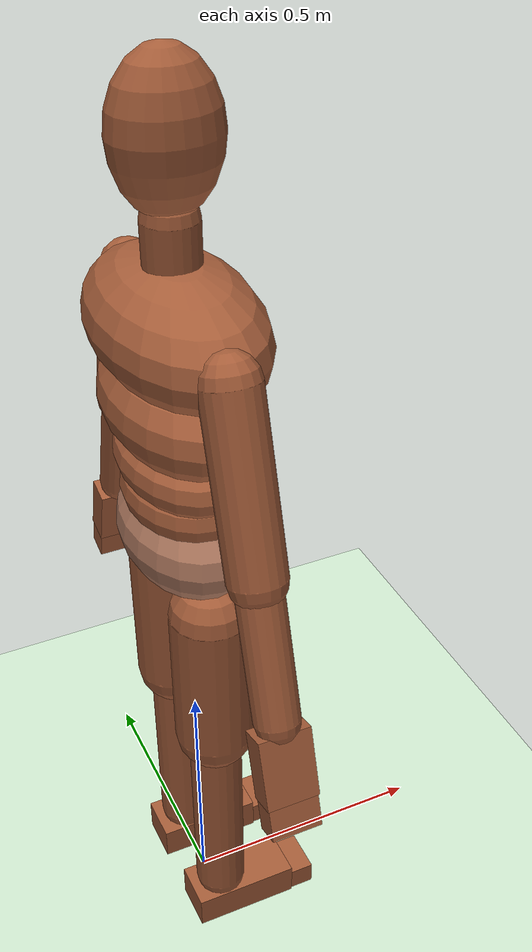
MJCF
<mujoco model="noted_average_human_body_articulated">

    <compiler angle="degree" inertiafromgeom="auto"/>

    <option integrator="implicitfast" iterations="20" solver="Newton" timestep="0.0025"/>

    <visual>
        <map fogend="5" fogstart="3"/>
        <global azimuth="150" elevation="-15"/>
        <headlight ambient="0.35 0.35 0.35" diffuse="0.65 0.65 0.65" specular="0.2 0.2 0.2"/>
    </visual>

    <asset>
        <texture builtin="gradient" height="100" rgb1=".4 .5 .6" rgb2="0 0 0" type="skybox" width="100"/>
        <texture builtin="flat" height="1278" mark="cross" markrgb="1 1 1" name="texgeom"
                 random="0.01" rgb1="0.80 0.60 0.47" rgb2="0.80 0.60 0.47" type="cube" width="127"/>
        <texture builtin="checker" height="100" name="texplane" rgb1="0 0 0" rgb2="0.8 0.8 0.8"
                 type="2d" width="100"/>
        <material name="MatPlane" reflectance="0.35" shininess="1" specular="0.4"
                  texrepeat="60 60" texture="texplane"/>
        <material name="skin" texture="texgeom" texuniform="true" rgba="0.80 0.60 0.47 1"/>
        <material name="skin_dark" rgba="0.68 0.47 0.37 1"/>
    </asset>

    <default>
        <joint limited="true" damping="1.5" armature="0.002"/>
        <geom conaffinity="1" condim="3" contype="1" density="950"
              friction="0.6 0 0" margin="0" material="skin"/>
        <motor ctrllimited="true"/>
    </default>

    <worldbody>
        <light cutoff="100" diffuse="1 1 1" dir="0 0 -1.3" directional="true"
               exponent="1" pos="0 0 3" specular=".1 .1 .1"/>
        <geom condim="3" friction="1 .1 .1" material="MatPlane" name="floor"
              pos="0 0 0" rgba="0.8 0.9 0.8 1" size="20 20 0.125" type="plane"/>
        <camera name="front" pos="0 -3.2 1.0" xyaxes="1 0 0 0 0.35 0.94"/>
        <camera name="side" pos="3.0 0 1.0" xyaxes="0 1 0 -0.35 0 0.94"/>

        <body name="pelvis_body" pos="0 0 0.920">
            <camera name="track" mode="trackcom" pos="0 -4 1.0" xyaxes="1 0 0 0 0 1"/>
            <freejoint name="root"/>
            <geom name="pelvis" type="ellipsoid" pos="0 0 0.015"
                  size="0.115 0.170 0.105" mass="10.0" material="skin_dark"/>

            <body name="lumbar_lower_body" pos="0 0 0.055">
                <joint name="lumbar_lower_flex" axis="0 1 0" range="-9 20" damping="4" stiffness="20"/>
                <joint name="lumbar_lower_lat" axis="1 0 0" range="-8 8" damping="3" stiffness="12"/>
                <joint name="lumbar_lower_axial" axis="0 0 1" range="-5 5" damping="3" stiffness="10"/>
                <geom name="lumbar_lower" type="ellipsoid" pos="0 0 0.045" size="0.105 0.145 0.075" mass="5.0"/>

                <body name="lumbar_upper_body" pos="0 0 0.070">
                    <joint name="lumbar_upper_flex" axis="0 1 0" range="-8 20" damping="4" stiffness="18"/>
                    <joint name="lumbar_upper_lat" axis="1 0 0" range="-8 8" damping="3" stiffness="12"/>
                    <joint name="lumbar_upper_axial" axis="0 0 1" range="-5 5" damping="3" stiffness="10"/>
                    <geom name="lumbar_upper" type="ellipsoid" pos="0 0 0.040" size="0.110 0.165 0.075" mass="5.0"/>

                    <body name="thoracic_lower_body" pos="0 0 0.080">
                        <joint name="thoracic_lower_flex" axis="0 1 0" range="-5 15" damping="4" stiffness="16"/>
                        <joint name="thoracic_lower_lat" axis="1 0 0" range="-8 8" damping="3" stiffness="12"/>
                        <joint name="thoracic_lower_axial" axis="0 0 1" range="-12 12" damping="3" stiffness="8"/>
                        <geom name="thoracic_lower" type="ellipsoid" pos="0 0 0.065" size="0.125 0.200 0.100" mass="6.0"/>

                        <body name="thoracic_upper_body" pos="0 0 0.130">
                            <joint name="thoracic_upper_flex" axis="0 1 0" range="-4 15" damping="4" stiffness="14"/>
                            <joint name="thoracic_upper_lat" axis="1 0 0" range="-8 8" damping="3" stiffness="10"/>
                            <joint name="thoracic_upper_axial" axis="0 0 1" range="-12 12" damping="3" stiffness="8"/>
                            <geom name="thoracic_upper" type="ellipsoid" pos="0 0 0.070" size="0.135 0.230 0.105" mass="6.6"/>

                            <body name="neck_body" pos="0 0 0.140">
                                <joint name="neck_flex" axis="0 1 0" range="-40 55" damping="2"/>
                                <joint name="neck_lat" axis="1 0 0" range="-35 35" damping="2"/>
                                <joint name="neck_axial" axis="0 0 1" range="-55 55" damping="2"/>
                                <geom name="neck_stick" type="capsule" fromto="0 0 0  0 0 0.100" size="0.047" mass="0.4"/>
                                <geom name="head" type="ellipsoid" pos="0 0 0.225" size="0.090 0.075 0.125" mass="4.8"/>
                            </body>

                            <body name="left_upper_arm_body" pos="0 0.210 0.075">
                                <joint name="left_shoulder_flex" axis="0 -0.957024 -0.290007" range="-40 145" damping="2"/>
                                <joint name="left_shoulder_abd" axis="1 0 0" range="-25 140" damping="2"/>
                                <joint name="left_shoulder_rot" axis="0 0.290007 -0.957024" range="-60 70" damping="2"/>
                                <geom name="left_upper_arm" type="capsule" fromto="0 0 0  0 0.090194 -0.297641" size="0.050" mass="2.03"/>

                                <body name="left_forearm_body" pos="0 0.090194 -0.297641">
                                    <joint name="left_elbow_flex" axis="0 -0.957024 -0.290007" range="0 135" damping="1.5"/>
                                    <joint name="left_forearm_roll" axis="0 0.290007 -0.957024" range="-80 80" damping="0.8"/>
                                    <geom name="left_forearm" type="capsule" fromto="0 0 0  0 0.071773 -0.236851" size="0.040" mass="1.22"/>

                                    <body name="left_palm_body" pos="0 0.071773 -0.236851"
                                          quat="0.707107 0 0.205066 -0.676718">
                                        <joint name="left_wrist_flex" axis="0 -0.957024 -0.290007" range="-70 80" damping="0.7"/>
                                        <joint name="left_wrist_dev" axis="1 0 0" range="-30 35" damping="0.7"/>
                                        <geom name="left_palm" type="box" pos="0 0.023201 -0.076562"
                                              quat="0.989198 0.146588 0 0" size="0.026 0.047 0.065"
                                              friction="0.8 0 0" mass="0.30"/>

                                        <body name="left_thumb_body" pos="0.020 0.045 -0.050">
                                            <joint name="left_thumb_flex" axis="0 1 0" range="0 60" damping="0.3" armature="0.0001"/>
                                            <geom name="left_thumb" type="capsule" fromto="0 0 0  0.025 0.040 -0.060" size="0.015" friction="0.8 0 0" mass="0.04"/>
                                        </body>

                                        <body name="left_fingers_body" pos="0 0.042051 -0.138769">
                                            <joint name="left_fingers_flex" axis="0 -0.957024 -0.290007" range="0 80" damping="0.3" armature="0.0001"/>
                                            <geom name="left_fingers_chunk" type="box" pos="0 0.007250 -0.023926"
                                                  quat="0.989198 0.146588 0 0" size="0.024 0.045 0.035"
                                                  friction="0.8 0 0" mass="0.12"/>
                                        </body>
                                    </body>
                                </body>
                            </body>

                            <body name="right_upper_arm_body" pos="0 -0.210 0.075">
                                <joint name="right_shoulder_flex" axis="0 -0.957024 0.290007" range="-40 145" damping="2"/>
                                <joint name="right_shoulder_abd" axis="-1 0 0" range="-25 140" damping="2"/>
                                <joint name="right_shoulder_rot" axis="0 -0.290007 -0.957024" range="-60 70" damping="2"/>
                                <geom name="right_upper_arm" type="capsule" fromto="0 0 0  0 -0.090194 -0.297641" size="0.050" mass="2.03"/>

                                <body name="right_forearm_body" pos="0 -0.090194 -0.297641">
                                    <joint name="right_elbow_flex" axis="0 -0.957024 0.290007" range="0 135" damping="1.5"/>
                                    <joint name="right_forearm_roll" axis="0 -0.290007 -0.957024" range="-80 80" damping="0.8"/>
                                    <geom name="right_forearm" type="capsule" fromto="0 0 0  0 -0.071773 -0.236851" size="0.040" mass="1.22"/>

                                    <body name="right_palm_body" pos="0 -0.071773 -0.236851"
                                          quat="0.707107 0 0.205066 0.676718">
                                        <joint name="right_wrist_flex" axis="0 -0.957024 0.290007" range="-70 80" damping="0.7"/>
                                        <joint name="right_wrist_dev" axis="-1 0 0" range="-30 35" damping="0.7"/>
                                        <geom name="right_palm" type="box" pos="0 -0.023201 -0.076562"
                                              quat="0.989198 -0.146588 0 0" size="0.026 0.047 0.065"
                                              friction="0.8 0 0" mass="0.30"/>

                                        <body name="right_thumb_body" pos="0.020 -0.045 -0.050">
                                            <joint name="right_thumb_flex" axis="0 1 0" range="0 60" damping="0.3" armature="0.0001"/>
                                            <geom name="right_thumb" type="capsule" fromto="0 0 0  0.025 -0.040 -0.060" size="0.015" friction="0.8 0 0" mass="0.04"/>
                                        </body>

                                        <body name="right_fingers_body" pos="0 -0.042051 -0.138769">
                                            <joint name="right_fingers_flex" axis="0 -0.957024 0.290007" range="0 80" damping="0.3" armature="0.0001"/>
                                            <geom name="right_fingers_chunk" type="box" pos="0 -0.007250 -0.023926"
                                                  quat="0.989198 -0.146588 0 0" size="0.024 0.045 0.035"
                                                  friction="0.8 0 0" mass="0.12"/>
                                        </body>
                                    </body>
                                </body>
                            </body>
                        </body>
                    </body>
                </body>
            </body>

            <body name="left_thigh_body" pos="0 0.100 0">
                <joint name="left_hip_flex" axis="0 -1 0" range="-20 120" damping="3"/>
                <joint name="left_hip_abd" axis="1 0 0" range="-30 45" damping="3"/>
                <joint name="left_hip_rot" axis="0 0 1" range="-45 45" damping="2"/>
                <geom name="left_thigh" type="capsule" fromto="0 0 -0.110  0 0 -0.400" size="0.075" mass="10.6"/>

                <body name="left_shank_body" pos="0 0 -0.400">
                    <joint name="left_knee_flex" axis="0 1 0" range="0 135" damping="2"/>
                    <geom name="left_shank" type="capsule" fromto="0 0 0  0 0 -0.430" size="0.050" mass="3.25"/>

                    <body name="left_foot_body" pos="0 0 -0.430">
                        <joint name="left_ankle_flex" axis="0 1 0" range="-30 50" damping="1"/>
                        <joint name="left_ankle_inv" axis="1 0 0" range="-15 35" damping="1"/>
                        <geom name="left_foot" type="box" pos="0.040 0 -0.055" size="0.105 0.048 0.035" friction="0.7 0.01 0" mass="0.80"/>

                        <body name="left_toes_body" pos="0.145 0 -0.055">
                            <joint name="left_toes_flex" axis="0 1 0" range="-60 25" damping="0.4" armature="0.0001"/>
                            <geom name="left_toes_chunk" type="box" pos="0.015 0 -0.010" size="0.035 0.044 0.025" friction="0.7 0.01 0" mass="0.23"/>
                        </body>
                    </body>
                </body>
            </body>

            <body name="right_thigh_body" pos="0 -0.100 0">
                <joint name="right_hip_flex" axis="0 -1 0" range="-20 120" damping="3"/>
                <joint name="right_hip_abd" axis="-1 0 0" range="-30 45" damping="3"/>
                <joint name="right_hip_rot" axis="0 0 1" range="-45 45" damping="2"/>
                <geom name="right_thigh" type="capsule" fromto="0 0 -0.110  0 0 -0.400" size="0.075" mass="10.6"/>

                <body name="right_shank_body" pos="0 0 -0.400">
                    <joint name="right_knee_flex" axis="0 1 0" range="0 135" damping="2"/>
                    <geom name="right_shank" type="capsule" fromto="0 0 0  0 0 -0.430" size="0.050" mass="3.25"/>

                    <body name="right_foot_body" pos="0 0 -0.430">
                        <joint name="right_ankle_flex" axis="0 1 0" range="-30 50" damping="1"/>
                        <joint name="right_ankle_inv" axis="-1 0 0" range="-15 35" damping="1"/>
                        <geom name="right_foot" type="box" pos="0.040 0 -0.055" size="0.105 0.048 0.035" friction="0.7 0.01 0" mass="0.80"/>

                        <body name="right_toes_body" pos="0.145 0 -0.055">
                            <joint name="right_toes_flex" axis="0 1 0" range="-60 25" damping="0.4" armature="0.0001"/>
                            <geom name="right_toes_chunk" type="box" pos="0.015 0 -0.010" size="0.035 0.044 0.025" friction="0.7 0.01 0" mass="0.23"/>
                        </body>
                    </body>
                </body>
            </body>
        </body>
    </worldbody>

    <contact>
        <exclude body1="pelvis_body" body2="lumbar_lower_body"/>
        <exclude body1="pelvis_body" body2="lumbar_upper_body"/>
        <exclude body1="lumbar_lower_body" body2="lumbar_upper_body"/>
        <exclude body1="lumbar_lower_body" body2="thoracic_lower_body"/>
        <exclude body1="lumbar_upper_body" body2="thoracic_lower_body"/>
        <exclude body1="thoracic_lower_body" body2="thoracic_upper_body"/>
        <exclude body1="thoracic_upper_body" body2="neck_body"/>
        <exclude body1="thoracic_upper_body" body2="left_upper_arm_body"/>
        <exclude body1="thoracic_upper_body" body2="right_upper_arm_body"/>
        <exclude body1="thoracic_lower_body" body2="left_upper_arm_body"/>
        <exclude body1="thoracic_lower_body" body2="right_upper_arm_body"/>
        <exclude body1="left_forearm_body" body2="left_palm_body"/>
        <exclude body1="left_palm_body" body2="left_thumb_body"/>
        <exclude body1="left_palm_body" body2="left_fingers_body"/>
        <exclude body1="right_forearm_body" body2="right_palm_body"/>
        <exclude body1="right_palm_body" body2="right_thumb_body"/>
        <exclude body1="right_palm_body" body2="right_fingers_body"/>
        <exclude body1="pelvis_body" body2="left_thigh_body"/>
        <exclude body1="left_thigh_body" body2="left_shank_body"/>
        <exclude body1="left_shank_body" body2="left_foot_body"/>
        <exclude body1="left_foot_body" body2="left_toes_body"/>
        <exclude body1="pelvis_body" body2="right_thigh_body"/>
        <exclude body1="right_thigh_body" body2="right_shank_body"/>
        <exclude body1="right_shank_body" body2="right_foot_body"/>
        <exclude body1="right_foot_body" body2="right_toes_body"/>
    </contact>

    <actuator>
        <motor name="lumbar_lower_flex_motor" joint="lumbar_lower_flex" gear="1" ctrlrange="-65 45"/>
        <motor name="lumbar_lower_lat_motor" joint="lumbar_lower_lat" gear="1" ctrlrange="-30 30"/>
        <motor name="lumbar_lower_axial_motor" joint="lumbar_lower_axial" gear="1" ctrlrange="-20 20"/>
        <motor name="lumbar_upper_flex_motor" joint="lumbar_upper_flex" gear="1" ctrlrange="-50 35"/>
        <motor name="lumbar_upper_lat_motor" joint="lumbar_upper_lat" gear="1" ctrlrange="-30 30"/>
        <motor name="lumbar_upper_axial_motor" joint="lumbar_upper_axial" gear="1" ctrlrange="-20 20"/>
        <motor name="thoracic_lower_flex_motor" joint="thoracic_lower_flex" gear="1" ctrlrange="-30 30"/>
        <motor name="thoracic_lower_lat_motor" joint="thoracic_lower_lat" gear="1" ctrlrange="-30 30"/>
        <motor name="thoracic_lower_axial_motor" joint="thoracic_lower_axial" gear="1" ctrlrange="-20 20"/>
        <motor name="thoracic_upper_flex_motor" joint="thoracic_upper_flex" gear="1" ctrlrange="-30 30"/>
        <motor name="thoracic_upper_lat_motor" joint="thoracic_upper_lat" gear="1" ctrlrange="-30 30"/>
        <motor name="thoracic_upper_axial_motor" joint="thoracic_upper_axial" gear="1" ctrlrange="-20 20"/>
        <motor name="neck_flex_motor" joint="neck_flex" gear="1" ctrlrange="-32 30"/>
        <motor name="neck_lat_motor" joint="neck_lat" gear="1" ctrlrange="-18 18"/>
        <motor name="neck_axial_motor" joint="neck_axial" gear="1" ctrlrange="-10 10"/>
        <motor name="left_shoulder_flex_motor" joint="left_shoulder_flex" gear="1" ctrlrange="-35 50"/>
        <motor name="left_shoulder_abd_motor" joint="left_shoulder_abd" gear="1" ctrlrange="-50 40"/>
        <motor name="left_shoulder_rot_motor" joint="left_shoulder_rot" gear="1" ctrlrange="-25 20"/>
        <motor name="right_shoulder_flex_motor" joint="right_shoulder_flex" gear="1" ctrlrange="-35 50"/>
        <motor name="right_shoulder_abd_motor" joint="right_shoulder_abd" gear="1" ctrlrange="-50 40"/>
        <motor name="right_shoulder_rot_motor" joint="right_shoulder_rot" gear="1" ctrlrange="-25 20"/>
        <motor name="left_elbow_flex_motor" joint="left_elbow_flex" gear="1" ctrlrange="-35 50"/>
        <motor name="left_forearm_roll_motor" joint="left_forearm_roll" gear="1" ctrlrange="-13.1 16.2"/>
        <motor name="left_wrist_flex_motor" joint="left_wrist_flex" gear="1" ctrlrange="-11.4 24.7"/>
        <motor name="left_wrist_dev_motor" joint="left_wrist_dev" gear="1" ctrlrange="-7 15"/>
        <motor name="left_thumb_flex_motor" joint="left_thumb_flex" gear="1" ctrlrange="-1.5 3"/>
        <motor name="left_fingers_flex_motor" joint="left_fingers_flex" gear="1" ctrlrange="-3 6"/>
        <motor name="right_elbow_flex_motor" joint="right_elbow_flex" gear="1" ctrlrange="-35 50"/>
        <motor name="right_forearm_roll_motor" joint="right_forearm_roll" gear="1" ctrlrange="-13.1 16.2"/>
        <motor name="right_wrist_flex_motor" joint="right_wrist_flex" gear="1" ctrlrange="-11.4 24.7"/>
        <motor name="right_wrist_dev_motor" joint="right_wrist_dev" gear="1" ctrlrange="-7 15"/>
        <motor name="right_thumb_flex_motor" joint="right_thumb_flex" gear="1" ctrlrange="-1.5 3"/>
        <motor name="right_fingers_flex_motor" joint="right_fingers_flex" gear="1" ctrlrange="-3 6"/>
        <motor name="left_hip_flex_motor" joint="left_hip_flex" gear="1" ctrlrange="-178 156"/>
        <motor name="left_hip_abd_motor" joint="left_hip_abd" gear="1" ctrlrange="-90 80"/>
        <motor name="left_hip_rot_motor" joint="left_hip_rot" gear="1" ctrlrange="-25 30"/>
        <motor name="left_knee_flex_motor" joint="left_knee_flex" gear="1" ctrlrange="-180 90"/>
        <motor name="left_ankle_flex_motor" joint="left_ankle_flex" gear="1" ctrlrange="-48.6 140.2"/>
        <motor name="left_ankle_inv_motor" joint="left_ankle_inv" gear="1" ctrlrange="-29.9 34.8"/>
        <motor name="left_toes_flex_motor" joint="left_toes_flex" gear="1" ctrlrange="-5 10"/>
        <motor name="right_hip_flex_motor" joint="right_hip_flex" gear="1" ctrlrange="-178 156"/>
        <motor name="right_hip_abd_motor" joint="right_hip_abd" gear="1" ctrlrange="-90 80"/>
        <motor name="right_hip_rot_motor" joint="right_hip_rot" gear="1" ctrlrange="-25 30"/>
        <motor name="right_knee_flex_motor" joint="right_knee_flex" gear="1" ctrlrange="-180 90"/>
        <motor name="right_ankle_flex_motor" joint="right_ankle_flex" gear="1" ctrlrange="-48.6 140.2"/>
        <motor name="right_ankle_inv_motor" joint="right_ankle_inv" gear="1" ctrlrange="-29.9 34.8"/>
        <motor name="right_toes_flex_motor" joint="right_toes_flex" gear="1" ctrlrange="-5 10"/>
    </actuator>
</mujoco>
